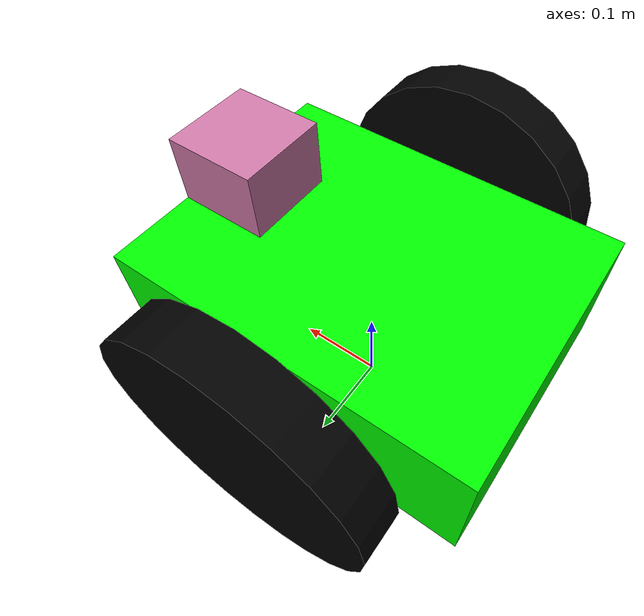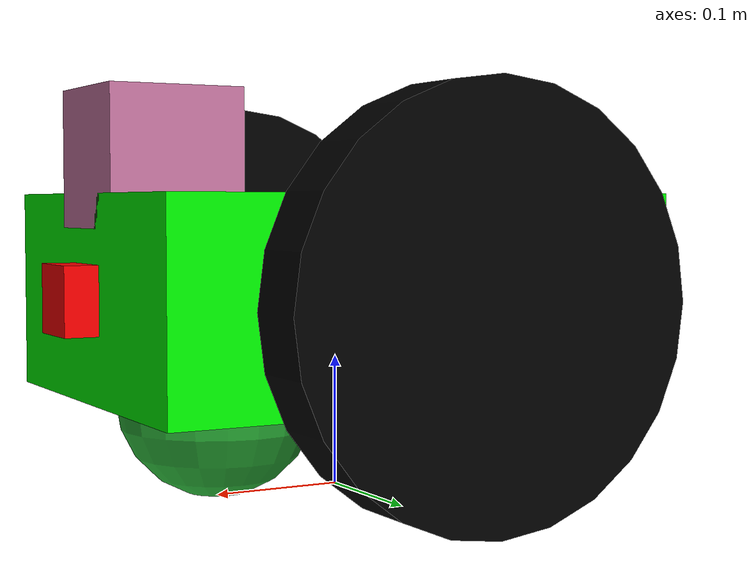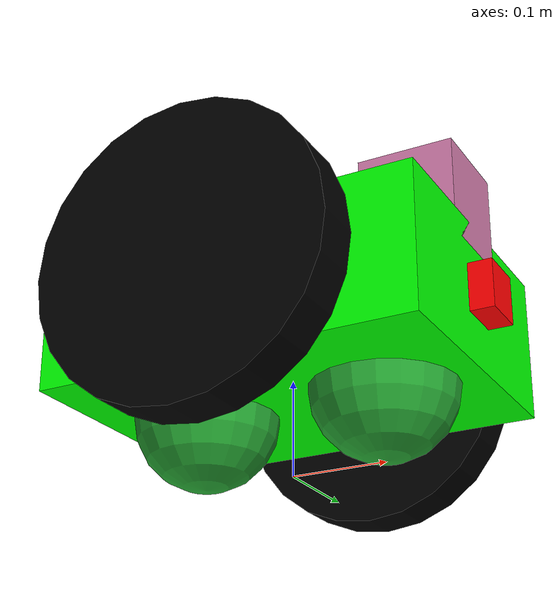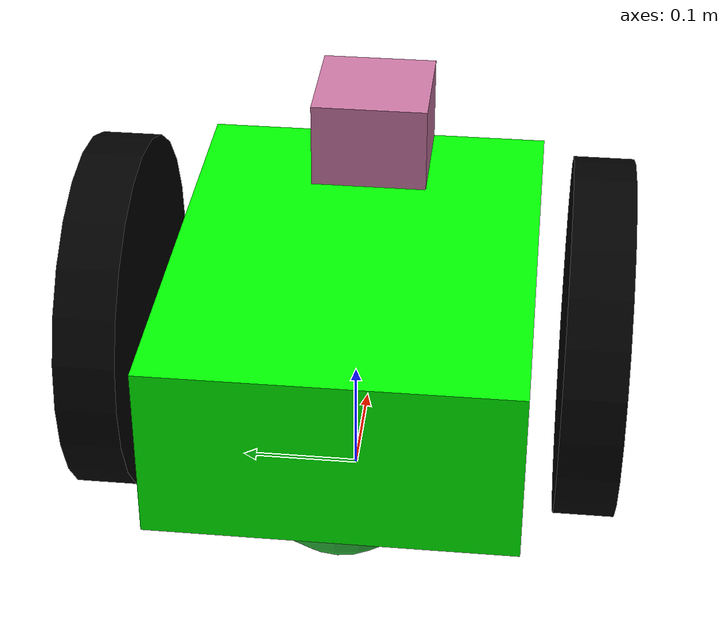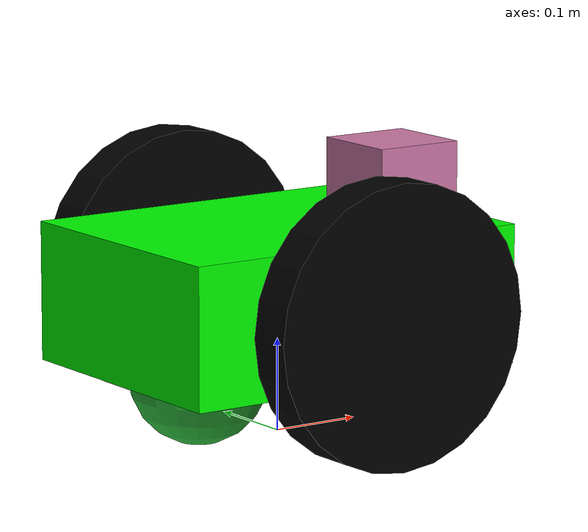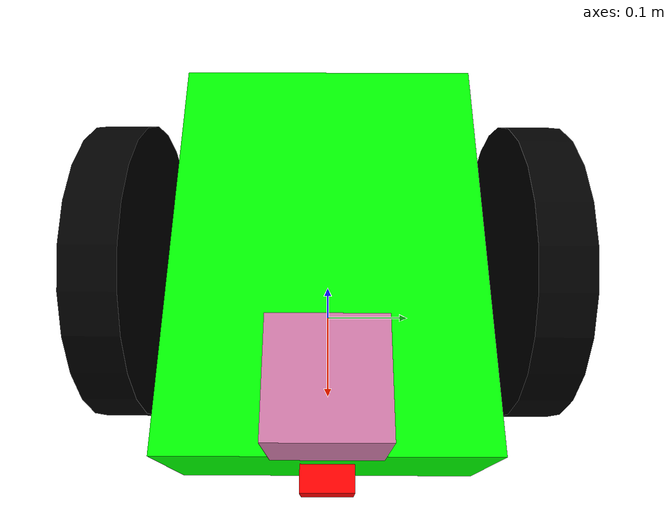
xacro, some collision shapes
<robot name="my_robot" xmlns:xacro="http://www.ros.org/wiki/xacro">
<xacro:include filename="$(find my_robot)/urdf/my_robot.gazebo" />
  <link name="robot_footprint"></link>

  <joint name="robot_footprint_joint" type="fixed">
    <origin xyz="0 0 0.15" rpy="0 0 0" />
    <parent link="robot_footprint"/>
    <child link="chassis" />
  </joint>

  <link name='chassis'>
    <pose>0 0 0.1 0 0 0</pose>

    <inertial>
      <mass value="30.0"/>
      <origin xyz="0.0 0 0" rpy=" 0 0 0"/>
      <inertia
          ixx="0.1" ixy="0" ixz="0"
          iyy="0.1" iyz="0"
          izz="0.1"
      />
    </inertial>

    <collision name='collision'>
      <origin xyz="0 0 0" rpy=" 0 0 0"/>
      <geometry>
        <box size=".4 .3 .15"/>
      </geometry>
      <material name="green">
        <color rgba="0.0 1.0 0.0 1.0"/>
      </material>
    </collision>

    <visual name='chassis_visual'>
      <origin xyz="0 0 0" rpy=" 0 0 0"/>
      <geometry>
        <box size=".4 .3 .15"/>
      </geometry>
       <material name="green">
        <color rgba="0.0 1.0 0.0 1.0"/>
      </material>
   </visual>

    <collision name='back_caster_collision'>
      <origin xyz="-0.1 0 -0.075" rpy=" 0 0 0"/>
      <geometry>
        <sphere radius="0.073"/>
      </geometry>
    </collision>

    <visual name='back_caster_visual'>
      <origin xyz="-0.1 0 -0.075" rpy=" 0 0 0"/>
      <geometry>
        <sphere radius="0.075"/>
      </geometry>
    </visual>

    <collision name='front_caster_collision'>
      <origin xyz="0.1 0 -0.075" rpy=" 0 0 0"/>
      <geometry>
        <sphere radius="0.073"/>
      </geometry>
    </collision>

    <visual name='front_caster_visual'>
      <origin xyz="0.1 0 -0.075" rpy=" 0 0 0"/>
      <geometry>
        <sphere radius="0.075"/>
      </geometry>
    </visual>

  </link>

  <gazebo reference="chassis">
    <material>Gazebo/Green</material>
  </gazebo>

  <joint type="continuous" name="mid_right_wheel_hinge">
    <origin xyz="0 -0.2 0" rpy="0 0 0"/>
    <parent link="chassis"/>
    <child link="mid_right_wheel"/>
    <axis xyz="0 1 0" rpy="0 0 0"/>
    <limit effort="10000" velocity="1000"/>
    <dynamics damping="1.0" friction="1.0"/>
  </joint>

  <link name='mid_right_wheel'>
    <pose>0 0 0.1 0 0 0</pose>

    <inertial>
      <mass value="10.0"/>
      <origin xyz="0 0 0" rpy=" 0 1.5707 1.5707"/>
      <inertia
          ixx="0.1" ixy="0" ixz="0"
          iyy="0.1" iyz="0"
          izz="0.1"
      />
    </inertial>

    <collision name='mid_right_wheel_collision'>
      <origin xyz="0 0 0" rpy=" 0 1.5707 1.5707"/>
      <geometry>
        <cylinder radius=".15" length=".05"/>
      </geometry>
      <material name="black">
        <color rgba="0.0 0.0 0.0 1.0"/>
      </material>
    </collision>

    <visual name='mid_right_wheel_visual'>
      <origin xyz="0 0 0" rpy=" 0 1.5707 1.5707"/>
       <geometry>
        <cylinder radius=".15" length=".05"/>
      </geometry>
      <material name="black">
        <color rgba="0.0 0.0 0.0 1.0"/>
      </material>
    </visual>

  </link>

  <gazebo reference="mid_right_wheel">
    <material>Gazebo/Black</material>
  </gazebo>

  <joint type="continuous" name="mid_left_wheel_hinge">
    <origin xyz="0 0.2 0" rpy="0 0 0"/>
    <parent link="chassis"/>
    <child link="mid_left_wheel"/>
    <axis xyz="0 1 0" rpy="0 0 0"/>
    <limit effort="10000" velocity="1000"/>
    <dynamics damping="1.0" friction="1.0"/>
  </joint>

  <link name='mid_left_wheel'>
    <pose>0 0 0.1 0 0 0</pose>

    <inertial>
      <mass value="10.0"/>
      <origin xyz="0 0 0" rpy=" 0 1.5707 1.5707"/>
      <inertia
          ixx="0.1" ixy="0" ixz="0"
          iyy="0.1" iyz="0"
          izz="0.1"
      />
    </inertial>

    <collision name='mid_left_wheel_collision'>
      <origin xyz="0 0 0" rpy=" 0 1.5707 1.5707"/>
      <geometry>
        <cylinder radius=".15" length=".05"/>
      </geometry>
      <material name="black">
        <color rgba="0.0 0.0 0.0 1.0"/>
      </material>
    </collision>

    <visual name='mid_left_wheel_visual'>
      <origin xyz="0 0 0" rpy=" 0 1.5707 1.5707"/>
      <geometry>
        <cylinder radius=".15" length=".05"/>
      </geometry>
      <material name="black">
        <color rgba="0.0 0.0 0.0 1.0"/>
      </material>
    </visual>

  </link>

  <gazebo reference="mid_left_wheel">
    <material>Gazebo/Black</material>
  </gazebo>

  <joint type="fixed" name="camera_joint">
    <origin xyz="0.2 0 0" rpy="0 0 0"/>
    <parent link="chassis"/>
    <child link="camera"/>
    <axis xyz="0 1 0" rpy="0 0 0"/>
  </joint>

  <link name='camera'>
    <pose>0 0 0.1 0 0 0</pose>

    <inertial>
      <mass value="0.1"/>
      <origin xyz="0 0 0" rpy=" 0 0 0 "/>
      <box_inertia m="0.1" x="0.05" y="0.05" z="0.05"/>
      <inertia
          ixx="1e-6" ixy="0" ixz="0"
          iyy="1e-6" iyz="0"
          izz="1e-6"
      />
    </inertial>

    <collision name='camera_collision'>
      <origin xyz="0 0 0" rpy=" 0 0 0 "/>
      <geometry>
        <box size=".05 .05 .05"/>
      </geometry>
      <material name="red">
        <color rgba="1.0 0.0 0.0 1.0"/>
      </material>
    </collision>

    <visual name='camera_visual'>
      <origin xyz="0 0 0" rpy=" 0 0 0 "/>
      <geometry>
        <box size=".05 .05 .05"/>
      </geometry>
      <material name="red">
        <color rgba="1.0 0.0 0.0 1.0"/>
      </material>
    </visual>

  </link>

  <gazebo reference="camera">
    <material>Gazebo/Red</material>
  </gazebo>

  <joint name="camera_optical_joint" type="fixed">
    <origin xyz="0 0 0" rpy="-1.5707 0 -1.5707"/>
    <parent link="camera"/>
    <child link="camera_link_optical"/>
  </joint>

  <link name="camera_link_optical">
  </link>

  <joint type="fixed" name="hokuyo_joint">
    <origin xyz="0.15 0 0.1" rpy="0 0 0"/>
    <parent link="chassis"/>
    <child link="hokuyo"/>
    <axis xyz="0 1 0" rpy="0 0 0"/>
  </joint>

  <link name='hokuyo'>
    <pose>0 0 0.1 0 0 0</pose>

    <inertial>
      <mass value="1e-5"/>
      <origin xyz="0 0 0" rpy=" 0 0 0 "/>
      <inertia
          ixx="1e-6" ixy="0" ixz="0"
          iyy="1e-6" iyz="0"
          izz="1e-6"
      />
    </inertial>

    <collision name='hokuyo_collision'>
      <origin xyz="0 0 0" rpy=" 0 0 0 "/>
      <geometry>
        <box size=".1 .1 .1"/>
      </geometry>
    </collision>

    <visual name='hokuyo_visual'>
      <origin xyz="0 0 0" rpy=" 0 0 0 "/>
      <geometry>
        <mesh filename="package://my_robot/meshes/hokuyo.dae"/>
      </geometry>
    </visual>

  </link>

</robot>
